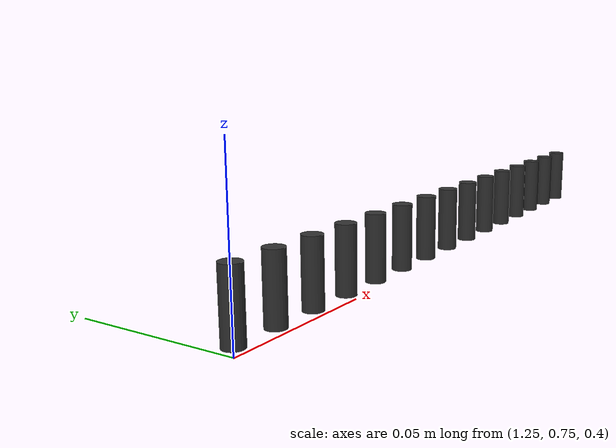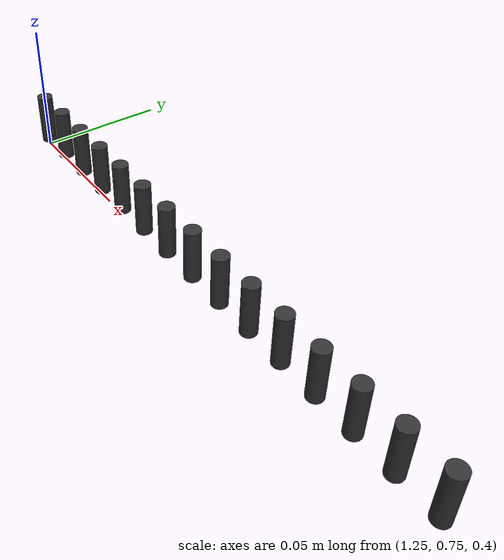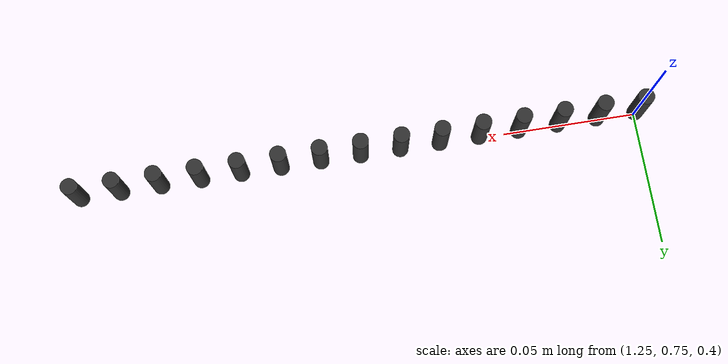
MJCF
<mujoco model="rope">
     <asset>
        <material name="block_mat" specular="0" shininess="0.5" reflectance="0" rgba="0.2 0.2 0.2 1"></material>
    </asset>
    <compiler angle="radian"/>
    <size njmax="500" nconmax="100"/>
    <worldbody>
        <body name="CB0" pos="1.25 .75 0.4025">
            <joint name="object1:joint" type="free" damping="0.01"></joint>
            <geom name="CGH0" size="0.003 0.01" pos="0 0 .01" type="cylinder" material="block_mat"></geom>
            <body name="CB1" pos="0.015 0 0">
                <joint name="CJ0_1" pos="-0.02 0 0" axis="0 1 0" group="3" damping="0.003"/>
                <joint name="CJ1_1" pos="-0.02 0 0" axis="0 0 1" group="3" damping="0.003"/>
                <geom name="CGH1" size="0.003 0.01" pos="0 0 .01" type="cylinder" material="block_mat"></geom>
                <body name="CB2" pos="0.015 0 0">
                    <joint name="CJ0_2" pos="-0.02 0 0" axis="0 1 0" group="3" damping="0.003"/>
                    <joint name="CJ1_2" pos="-0.02 0 0" axis="0 0 1" group="3" damping="0.003"/>
                    <geom name="CGH2" size="0.003 0.01" pos="0 0 .01" type="cylinder" material="block_mat"></geom>
                    <body name="CB3" pos="0.015 0 0">
                        <joint name="CJ0_3" pos="-0.02 0 0" axis="0 1 0" group="3" damping="0.003"/>
                        <joint name="CJ1_3" pos="-0.02 0 0" axis="0 0 1" group="3" damping="0.003"/>
                        <geom name="CGH3" size="0.003 0.01" pos="0 0 .01" type="cylinder" material="block_mat"></geom>
                        <body name="CB4" pos="0.015 0 0">
                            <joint name="CJ0_4" pos="-0.02 0 0" axis="0 1 0" group="3" damping="0.003"/>
                            <joint name="CJ1_4" pos="-0.02 0 0" axis="0 0 1" group="3" damping="0.003"/>
                            <geom name="CGH4" size="0.003 0.01" pos="0 0 .01" type="cylinder"
                                  material="block_mat"></geom>
                            <body name="CB5" pos="0.015 0 0">
                                <joint name="CJ0_5" pos="-0.02 0 0" axis="0 1 0" group="3" damping="0.003"/>
                                <joint name="CJ1_5" pos="-0.02 0 0" axis="0 0 1" group="3" damping="0.003"/>
                                <geom name="CGH5" size="0.003 0.01" pos="0 0 .01" type="cylinder"
                                      material="block_mat"></geom>
                                <body name="CB6" pos="0.015 0 0">
                                    <joint name="CJ0_6" pos="-0.02 0 0" axis="0 1 0" group="3" damping="0.003"/>
                                    <joint name="CJ1_6" pos="-0.02 0 0" axis="0 0 1" group="3" damping="0.003"/>
                                    <geom name="CGH6" size="0.003 0.01" pos="0 0 .01" type="cylinder"
                                          material="block_mat"></geom>
                                    <body name="CB7" pos="0.015 0 0">
                                        <joint name="CJ0_7" pos="-0.02 0 0" axis="0 1 0" group="3" damping="0.003"/>
                                        <joint name="CJ1_7" pos="-0.02 0 0" axis="0 0 1" group="3" damping="0.003"/>
                                        <geom name="CGH7" size="0.003 0.01" pos="0 0 .01" type="cylinder"
                                              material="block_mat"></geom>
                                        <body name="CB8" pos="0.015 0 0">
                                            <joint name="CJ0_8" pos="-0.02 0 0" axis="0 1 0" group="3" damping="0.003"/>
                                            <joint name="CJ1_8" pos="-0.02 0 0" axis="0 0 1" group="3" damping="0.003"/>
                                            <geom name="CGH8" size="0.003 0.01" pos="0 0 .01" type="cylinder"
                                                  material="block_mat"></geom>
                                            <body name="CB9" pos="0.015 0 0">
                                                <joint name="CJ0_9" pos="-0.02 0 0" axis="0 1 0" group="3"
                                                       damping="0.003"/>
                                                <joint name="CJ1_9" pos="-0.02 0 0" axis="0 0 1" group="3"
                                                       damping="0.003"/>
                                                <geom name="CGH9" size="0.003 0.01" pos="0 0 .01" type="cylinder"
                                                      material="block_mat"></geom>
                                                <body name="CB10" pos="0.015 0 0">
                                                    <joint name="CJ0_10" pos="-0.02 0 0" axis="0 1 0" group="3"
                                                           damping="0.003"/>
                                                    <joint name="CJ1_10" pos="-0.02 0 0" axis="0 0 1" group="3"
                                                           damping="0.003"/>
                                                    <geom name="CGH10" size="0.003 0.01" pos="0 0 .01" type="cylinder"
                                                          material="block_mat"></geom>
                                                    <body name="CB11" pos="0.015 0 0">
                                                        <joint name="CJ0_11" pos="-0.02 0 0" axis="0 1 0" group="3"
                                                               damping="0.003"/>
                                                        <joint name="CJ1_11" pos="-0.02 0 0" axis="0 0 1" group="3"
                                                               damping="0.003"/>
                                                        <geom name="CGH11" size="0.003 0.01" pos="0 0 .01"
                                                              type="cylinder" material="block_mat"></geom>
                                                        <body name="CB12" pos="0.015 0 0">
                                                            <joint name="CJ0_12" pos="-0.02 0 0" axis="0 1 0" group="3"
                                                                   damping="0.003"/>
                                                            <joint name="CJ1_12" pos="-0.02 0 0" axis="0 0 1" group="3"
                                                                   damping="0.003"/>
                                                            <geom name="CGH12" size="0.003 0.01" pos="0 0 .01"
                                                                  type="cylinder" material="block_mat"></geom>
                                                            <body name="CB13" pos="0.015 0 0">
                                                                <joint name="CJ0_13" pos="-0.02 0 0" axis="0 1 0"
                                                                       group="3" damping="0.003"/>
                                                                <joint name="CJ1_13" pos="-0.02 0 0" axis="0 0 1"
                                                                       group="3" damping="0.003"/>
                                                                <geom name="CGH13" size="0.003 0.01" pos="0 0 .01"
                                                                      type="cylinder" material="block_mat"></geom>
                                                                <body name="CB14" pos="0.015 0 0">
                                                                    <joint name="CJ0_14" pos="-0.02 0 0" axis="0 1 0"
                                                                           group="3" damping="0.003"/>
                                                                    <joint name="CJ1_14" pos="-0.02 0 0" axis="0 0 1"
                                                                           group="3" damping="0.003"/>
                                                                    <geom name="CGH14" size="0.003 0.01" pos="0 0 .01"
                                                                          type="cylinder" material="block_mat"></geom>
                                                                </body>
                                                            </body>
                                                        </body>
                                                    </body>
                                                </body>
                                            </body>
                                        </body>
                                    </body>
                                </body>
                            </body>
                        </body>
                    </body>
                </body>
            </body>
        </body>
    </worldbody>
</mujoco>
